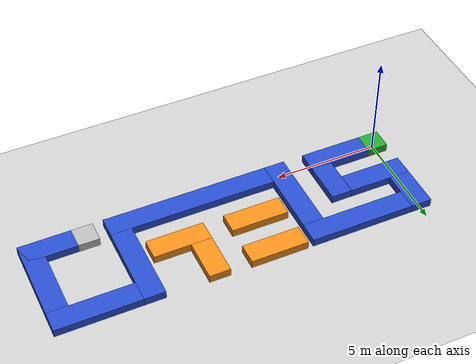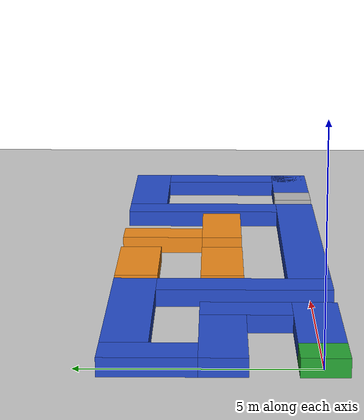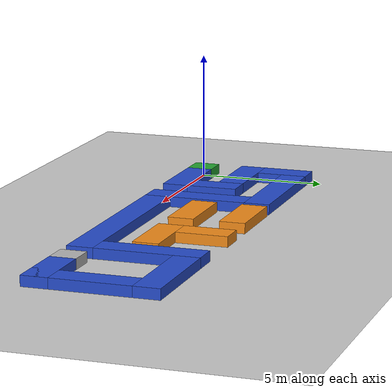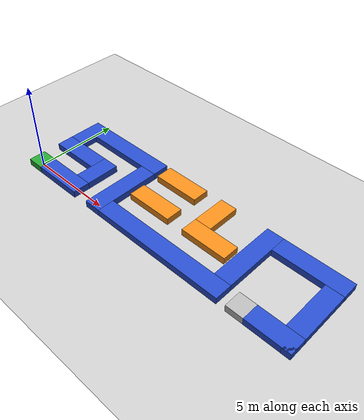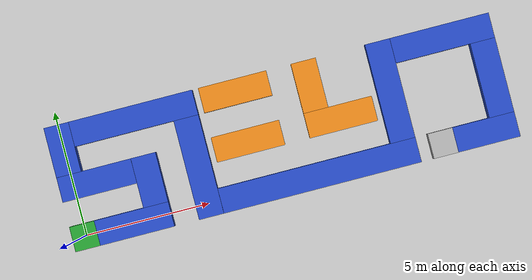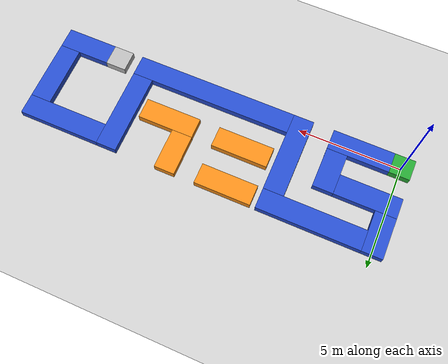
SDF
<sdf version='1.6'>
  <world name='default'>
    <light name='sun' type='directional'>
      <cast_shadows>1</cast_shadows>
      <pose frame=''>0 0 10 0 -0 0</pose>
      <diffuse>0.8 0.8 0.8 1</diffuse>
      <specular>0.2 0.2 0.2 1</specular>
      <attenuation>
        <range>1000</range>
        <constant>0.9</constant>
        <linear>0.01</linear>
        <quadratic>0.001</quadratic>
      </attenuation>
      <direction>-0.5 0.1 -0.9</direction>
    </light>
    <model name='ground_plane'>
      <static>1</static>
      <link name='link'>
        <collision name='collision'>
          <geometry>
            <plane>
              <normal>0 0 1</normal>
              <size>100 100</size>
            </plane>
          </geometry>
          <surface>
            <contact>
              <collide_bitmask>65535</collide_bitmask>
              <ode/>
            </contact>
            <friction>
              <ode>
                <mu>100</mu>
                <mu2>50</mu2>
              </ode>
              <torsional>
                <ode/>
              </torsional>
            </friction>
            <bounce/>
          </surface>
          <max_contacts>10</max_contacts>
        </collision>
        <visual name='visual'>
          <cast_shadows>0</cast_shadows>
          <geometry>
            <plane>
              <normal>0 0 1</normal>
              <size>100 100</size>
            </plane>
          </geometry>
          <material>
            <script>
              <uri>file://media/materials/scripts/gazebo.material</uri>
              <name>Gazebo/Grey</name>
            </script>
          </material>
        </visual>
        <self_collide>0</self_collide>
        <enable_wind>0</enable_wind>
        <kinematic>0</kinematic>
      </link>
    </model>
    <gravity>0 0 -9.8</gravity>
    <magnetic_field>6e-06 2.3e-05 -4.2e-05</magnetic_field>
    <atmosphere type='adiabatic'/>
    <physics name='default_physics' default='0' type='ode'>
      <max_step_size>0.001</max_step_size>
      <real_time_factor>1</real_time_factor>
      <real_time_update_rate>1000</real_time_update_rate>
    </physics>
    <scene>
      <ambient>0.4 0.4 0.4 1</ambient>
      <background>0.7 0.7 0.7 1</background>
      <shadows>1</shadows>
    </scene>
    <audio>
      <device>default</device>
    </audio>
    <wind/>
    <spherical_coordinates>
      <surface_model>EARTH_WGS84</surface_model>
      <latitude_deg>0</latitude_deg>
      <longitude_deg>0</longitude_deg>
      <elevation>0</elevation>
      <heading_deg>0</heading_deg>
    </spherical_coordinates>
    <model name='path_8'>
      <link name='block_link'>
        <pose frame=''>0 0 0 0 -0 0</pose>
        <inertial>
          <pose frame=''>0 0 0.2 0 -0 0</pose>
          <mass>500</mass>
          <inertia>
            <ixx>48.3333</ixx>
            <ixy>0</ixy>
            <ixz>0</ixz>
            <iyy>673.333</iyy>
            <iyz>0</iyz>
            <izz>708.333</izz>
          </inertia>
        </inertial>
        <collision name='block_link_collision'>
          <pose frame=''>0 0 0.2 0 -0 0</pose>
          <geometry>
            <box>
              <size>4 1 0.4</size>
            </box>
          </geometry>
          <surface>
            <contact>
              <ode/>
            </contact>
            <friction>
              <ode/>
              <torsional>
                <ode/>
              </torsional>
            </friction>
            <bounce/>
          </surface>
          <max_contacts>10</max_contacts>
        </collision>
        <visual name='block_link_visual'>
          <pose frame=''>0 0 0.2 0 -0 0</pose>
          <geometry>
            <box>
              <size>4 1 0.4</size>
            </box>
          </geometry>
          <material>
            <script>
              <name>Gazebo/Blue</name>
              <uri>file://media/materials/scripts/gazebo.material</uri>
            </script>
          </material>
        </visual>
        <gravity>1</gravity>
        <velocity_decay/>
        <self_collide>0</self_collide>
        <enable_wind>0</enable_wind>
        <kinematic>0</kinematic>
      </link>
      <static>1</static>
      <pose frame=''>13 2.5 0 0 -0 1.57</pose>
    </model>
    <model name='path_5'>
      <link name='block_link'>
        <pose frame=''>0 0 0 0 -0 0</pose>
        <inertial>
          <pose frame=''>0 0 0.2 0 -0 0</pose>
          <mass>500</mass>
          <inertia>
            <ixx>48.3333</ixx>
            <ixy>0</ixy>
            <ixz>0</ixz>
            <iyy>1048.33</iyy>
            <iyz>0</iyz>
            <izz>1083.33</izz>
          </inertia>
        </inertial>
        <collision name='block_link_collision'>
          <pose frame=''>0 0 0.2 0 -0 0</pose>
          <geometry>
            <box>
              <size>5 1 0.4</size>
            </box>
          </geometry>
          <surface>
            <contact>
              <ode/>
            </contact>
            <friction>
              <ode/>
              <torsional>
                <ode/>
              </torsional>
            </friction>
            <bounce/>
          </surface>
          <max_contacts>10</max_contacts>
        </collision>
        <visual name='block_link_visual'>
          <pose frame=''>0 0 0.2 0 -0 0</pose>
          <geometry>
            <box>
              <size>5 1 0.4</size>
            </box>
          </geometry>
          <material>
            <script>
              <name>Gazebo/Blue</name>
              <uri>file://media/materials/scripts/gazebo.material</uri>
            </script>
          </material>
        </visual>
        <gravity>1</gravity>
        <velocity_decay/>
        <self_collide>0</self_collide>
        <enable_wind>0</enable_wind>
        <kinematic>0</kinematic>
      </link>
      <static>1</static>
      <pose frame=''>3 4 0 0 -0 0</pose>
    </model>
    <model name='path_9'>
      <link name='block_link'>
        <pose frame=''>0 0 0 0 -0 0</pose>
        <inertial>
          <pose frame=''>0 0 0.2 0 -0 0</pose>
          <mass>500</mass>
          <inertia>
            <ixx>48.3333</ixx>
            <ixy>0</ixy>
            <ixz>0</ixz>
            <iyy>673.333</iyy>
            <iyz>0</iyz>
            <izz>708.333</izz>
          </inertia>
        </inertial>
        <collision name='block_link_collision'>
          <pose frame=''>0 0 0.2 0 -0 0</pose>
          <geometry>
            <box>
              <size>4 1 0.4</size>
            </box>
          </geometry>
          <surface>
            <contact>
              <ode/>
            </contact>
            <friction>
              <ode/>
              <torsional>
                <ode/>
              </torsional>
            </friction>
            <bounce/>
          </surface>
          <max_contacts>10</max_contacts>
        </collision>
        <visual name='block_link_visual'>
          <pose frame=''>0 0 0.2 0 -0 0</pose>
          <geometry>
            <box>
              <size>4 1 0.4</size>
            </box>
          </geometry>
          <material>
            <script>
              <name>Gazebo/Blue</name>
              <uri>file://media/materials/scripts/gazebo.material</uri>
            </script>
          </material>
        </visual>
        <gravity>1</gravity>
        <velocity_decay/>
        <self_collide>0</self_collide>
        <enable_wind>0</enable_wind>
        <kinematic>0</kinematic>
      </link>
      <static>1</static>
      <pose frame=''>15.5 4 0 0 -0 0</pose>
    </model>
    <model name='end_block'>
      <link name='block_link'>
        <pose frame=''>0 0 0 0 -0 0</pose>
        <inertial>
          <pose frame=''>0 0 0.2 0 -0 0</pose>
          <mass>500</mass>
          <inertia>
            <ixx>48.3333</ixx>
            <ixy>0</ixy>
            <ixz>0</ixz>
            <iyy>48.3333</iyy>
            <iyz>0</iyz>
            <izz>83.3333</izz>
          </inertia>
        </inertial>
        <collision name='block_link_collision'>
          <pose frame=''>0 0 0.2 0 -0 0</pose>
          <geometry>
            <box>
              <size>1 1 0.4</size>
            </box>
          </geometry>
          <surface>
            <contact>
              <ode/>
            </contact>
            <friction>
              <ode/>
              <torsional>
                <ode/>
              </torsional>
            </friction>
            <bounce/>
          </surface>
          <max_contacts>10</max_contacts>
        </collision>
        <visual name='block_link_visual'>
          <pose frame=''>0 0 0.2 0 -0 0</pose>
          <geometry>
            <box>
              <size>1 1 0.4</size>
            </box>
          </geometry>
          <material>
            <script>
              <name>Gazebo/CoM</name>
              <uri>file://media/materials/scripts/gazebo.material</uri>
            </script>
          </material>
        </visual>
        <gravity>1</gravity>
        <velocity_decay/>
        <self_collide>0</self_collide>
        <enable_wind>0</enable_wind>
        <kinematic>0</kinematic>
      </link>
      <static>1</static>
      <pose frame=''>14.5 0 0 0 -0 0</pose>
    </model>
    <model name='design_path_2'>
      <link name='block_link'>
        <pose frame=''>0 0 0 0 -0 0</pose>
        <inertial>
          <pose frame=''>0 0 0.2 0 -0 0</pose>
          <mass>500</mass>
          <inertia>
            <ixx>48.3333</ixx>
            <ixy>0</ixy>
            <ixz>0</ixz>
            <iyy>321.771</iyy>
            <iyz>0</iyz>
            <izz>356.771</izz>
          </inertia>
        </inertial>
        <collision name='block_link_collision'>
          <pose frame=''>0 0 0.2 0 -0 0</pose>
          <geometry>
            <box>
              <size>2.75 1 0.4</size>
            </box>
          </geometry>
          <surface>
            <contact>
              <ode/>
            </contact>
            <friction>
              <ode/>
              <torsional>
                <ode/>
              </torsional>
            </friction>
            <bounce/>
          </surface>
          <max_contacts>10</max_contacts>
        </collision>
        <visual name='block_link_visual'>
          <pose frame=''>0 0 0.2 0 -0 0</pose>
          <geometry>
            <box>
              <size>2.75 1 0.4</size>
            </box>
          </geometry>
          <material>
            <script>
              <name>Gazebo/Orange</name>
              <uri>file://media/materials/scripts/gazebo.material</uri>
            </script>
          </material>
        </visual>
        <gravity>1</gravity>
        <velocity_decay/>
        <self_collide>0</self_collide>
        <enable_wind>0</enable_wind>
        <kinematic>0</kinematic>
      </link>
      <static>1</static>
      <pose frame=''>7.125 2 0 0 -0 0</pose>
    </model>
    <model name='path_11'>
      <link name='block_link'>
        <pose frame=''>0 0 0 0 -0 0</pose>
        <inertial>
          <pose frame=''>0 0 0.2 0 -0 0</pose>
          <mass>500</mass>
          <inertia>
            <ixx>48.3333</ixx>
            <ixy>0</ixy>
            <ixz>0</ixz>
            <iyy>267.083</iyy>
            <iyz>0</iyz>
            <izz>302.083</izz>
          </inertia>
        </inertial>
        <collision name='block_link_collision'>
          <pose frame=''>0 0 0.2 0 -0 0</pose>
          <geometry>
            <box>
              <size>2.5 1 0.4</size>
            </box>
          </geometry>
          <surface>
            <contact>
              <ode/>
            </contact>
            <friction>
              <ode/>
              <torsional>
                <ode/>
              </torsional>
            </friction>
            <bounce/>
          </surface>
          <max_contacts>10</max_contacts>
        </collision>
        <visual name='block_link_visual'>
          <pose frame=''>0 0 0.2 0 -0 0</pose>
          <geometry>
            <box>
              <size>2.5 1 0.4</size>
            </box>
          </geometry>
          <material>
            <script>
              <name>Gazebo/Blue</name>
              <uri>file://media/materials/scripts/gazebo.material</uri>
            </script>
          </material>
        </visual>
        <gravity>1</gravity>
        <velocity_decay/>
        <self_collide>0</self_collide>
        <enable_wind>0</enable_wind>
        <kinematic>0</kinematic>
      </link>
      <static>1</static>
      <pose frame=''>16.25 0 0 0 -0 0</pose>
    </model>
    <model name='design_path_4'>
      <link name='block_link'>
        <pose frame=''>0 0 0 0 -0 0</pose>
        <inertial>
          <pose frame=''>0 0 0.2 0 -0 0</pose>
          <mass>500</mass>
          <inertia>
            <ixx>48.3333</ixx>
            <ixy>0</ixy>
            <ixz>0</ixz>
            <iyy>173.333</iyy>
            <iyz>0</iyz>
            <izz>208.333</izz>
          </inertia>
        </inertial>
        <collision name='block_link_collision'>
          <pose frame=''>0 0 0.2 0 -0 0</pose>
          <geometry>
            <box>
              <size>2 1 0.4</size>
            </box>
          </geometry>
          <surface>
            <contact>
              <ode/>
            </contact>
            <friction>
              <ode/>
              <torsional>
                <ode/>
              </torsional>
            </friction>
            <bounce/>
          </surface>
          <max_contacts>10</max_contacts>
        </collision>
        <visual name='block_link_visual'>
          <pose frame=''>0 0 0.2 0 -0 0</pose>
          <geometry>
            <box>
              <size>2 1 0.4</size>
            </box>
          </geometry>
          <material>
            <script>
              <name>Gazebo/Orange</name>
              <uri>file://media/materials/scripts/gazebo.material</uri>
            </script>
          </material>
        </visual>
        <gravity>1</gravity>
        <velocity_decay/>
        <self_collide>0</self_collide>
        <enable_wind>0</enable_wind>
        <kinematic>0</kinematic>
      </link>
      <static>1</static>
      <pose frame=''>10 3.5 0 0 -0 1.57</pose>
    </model>
    <model name='path_3'>
      <link name='block_link'>
        <pose frame=''>0 0 0 0 -0 0</pose>
        <inertial>
          <pose frame=''>0 0 0.2 0 -0 0</pose>
          <mass>500</mass>
          <inertia>
            <ixx>48.3333</ixx>
            <ixy>0</ixy>
            <ixz>0</ixz>
            <iyy>381.667</iyy>
            <iyz>0</iyz>
            <izz>416.667</izz>
          </inertia>
        </inertial>
        <collision name='block_link_collision'>
          <pose frame=''>0 0 0.2 0 -0 0</pose>
          <geometry>
            <box>
              <size>3 1 0.4</size>
            </box>
          </geometry>
          <surface>
            <contact>
              <ode/>
            </contact>
            <friction>
              <ode/>
              <torsional>
                <ode/>
              </torsional>
            </friction>
            <bounce/>
          </surface>
          <max_contacts>10</max_contacts>
        </collision>
        <visual name='block_link_visual'>
          <pose frame=''>0 0 0.2 0 -0 0</pose>
          <geometry>
            <box>
              <size>3 1 0.4</size>
            </box>
          </geometry>
          <material>
            <script>
              <name>Gazebo/Blue</name>
              <uri>file://media/materials/scripts/gazebo.material</uri>
            </script>
          </material>
        </visual>
        <gravity>1</gravity>
        <velocity_decay/>
        <self_collide>0</self_collide>
        <enable_wind>0</enable_wind>
        <kinematic>0</kinematic>
      </link>
      <static>1</static>
      <pose frame=''>1 2 0 0 -0 0</pose>
    </model>
    <model name='start_block'>
      <link name='block_link'>
        <pose frame=''>0 0 0 0 -0 0</pose>
        <inertial>
          <pose frame=''>0 0 0.2 0 -0 0</pose>
          <mass>500</mass>
          <inertia>
            <ixx>48.3333</ixx>
            <ixy>0</ixy>
            <ixz>0</ixz>
            <iyy>48.3333</iyy>
            <iyz>0</iyz>
            <izz>83.3333</izz>
          </inertia>
        </inertial>
        <collision name='block_link_collision'>
          <pose frame=''>0 0 0.2 0 -0 0</pose>
          <geometry>
            <box>
              <size>1 1 0.4</size>
            </box>
          </geometry>
          <surface>
            <contact>
              <ode/>
            </contact>
            <friction>
              <ode/>
              <torsional>
                <ode/>
              </torsional>
            </friction>
            <bounce/>
          </surface>
          <max_contacts>10</max_contacts>
        </collision>
        <visual name='block_link_visual'>
          <pose frame=''>0 0 0.2 0 -0 0</pose>
          <geometry>
            <box>
              <size>1 1 0.4</size>
            </box>
          </geometry>
          <material>
            <script>
              <name>Gazebo/Green</name>
              <uri>file://media/materials/scripts/gazebo.material</uri>
            </script>
          </material>
        </visual>
        <gravity>1</gravity>
        <velocity_decay/>
        <self_collide>0</self_collide>
        <enable_wind>0</enable_wind>
        <kinematic>0</kinematic>
      </link>
      <static>1</static>
      <pose frame=''>0 0 0 0 -0 0</pose>
    </model>
    <model name='path_7'>
      <link name='block_link'>
        <pose frame=''>0 0 0 0 -0 0</pose>
        <inertial>
          <pose frame=''>0 0 0.2 0 -0 0</pose>
          <mass>500</mass>
          <inertia>
            <ixx>48.3333</ixx>
            <ixy>0</ixy>
            <ixz>0</ixz>
            <iyy>2673.33</iyy>
            <iyz>0</iyz>
            <izz>2708.33</izz>
          </inertia>
        </inertial>
        <collision name='block_link_collision'>
          <pose frame=''>0 0 0.2 0 -0 0</pose>
          <geometry>
            <box>
              <size>8 1 0.4</size>
            </box>
          </geometry>
          <surface>
            <contact>
              <ode/>
            </contact>
            <friction>
              <ode/>
              <torsional>
                <ode/>
              </torsional>
            </friction>
            <bounce/>
          </surface>
          <max_contacts>10</max_contacts>
        </collision>
        <visual name='block_link_visual'>
          <pose frame=''>0 0 0.2 0 -0 0</pose>
          <geometry>
            <box>
              <size>8 1 0.4</size>
            </box>
          </geometry>
          <material>
            <script>
              <name>Gazebo/Blue</name>
              <uri>file://media/materials/scripts/gazebo.material</uri>
            </script>
          </material>
        </visual>
        <gravity>1</gravity>
        <velocity_decay/>
        <self_collide>0</self_collide>
        <enable_wind>0</enable_wind>
        <kinematic>0</kinematic>
      </link>
      <static>1</static>
      <pose frame=''>9.5 0 0 0 -0 0</pose>
    </model>
    <model name='design_path_3'>
      <link name='block_link'>
        <pose frame=''>0 0 0 0 -0 0</pose>
        <inertial>
          <pose frame=''>0 0 0.2 0 -0 0</pose>
          <mass>500</mass>
          <inertia>
            <ixx>48.3333</ixx>
            <ixy>0</ixy>
            <ixz>0</ixz>
            <iyy>321.771</iyy>
            <iyz>0</iyz>
            <izz>356.771</izz>
          </inertia>
        </inertial>
        <collision name='block_link_collision'>
          <pose frame=''>0 0 0.2 0 -0 0</pose>
          <geometry>
            <box>
              <size>2.75 1 0.4</size>
            </box>
          </geometry>
          <surface>
            <contact>
              <ode/>
            </contact>
            <friction>
              <ode/>
              <torsional>
                <ode/>
              </torsional>
            </friction>
            <bounce/>
          </surface>
          <max_contacts>10</max_contacts>
        </collision>
        <visual name='block_link_visual'>
          <pose frame=''>0 0 0.2 0 -0 0</pose>
          <geometry>
            <box>
              <size>2.75 1 0.4</size>
            </box>
          </geometry>
          <material>
            <script>
              <name>Gazebo/Orange</name>
              <uri>file://media/materials/scripts/gazebo.material</uri>
            </script>
          </material>
        </visual>
        <gravity>1</gravity>
        <velocity_decay/>
        <self_collide>0</self_collide>
        <enable_wind>0</enable_wind>
        <kinematic>0</kinematic>
      </link>
      <static>1</static>
      <pose frame=''>10.875 2 0 0 -0 0</pose>
    </model>
    <model name='path_1'>
      <link name='block_link'>
        <pose frame=''>0 0 0 0 -0 0</pose>
        <inertial>
          <pose frame=''>0 0 0.2 0 -0 0</pose>
          <mass>500</mass>
          <inertia>
            <ixx>48.3333</ixx>
            <ixy>0</ixy>
            <ixz>0</ixz>
            <iyy>381.667</iyy>
            <iyz>0</iyz>
            <izz>416.667</izz>
          </inertia>
        </inertial>
        <collision name='block_link_collision'>
          <pose frame=''>0 0 0.2 0 -0 0</pose>
          <geometry>
            <box>
              <size>3 1 0.4</size>
            </box>
          </geometry>
          <surface>
            <contact>
              <ode/>
            </contact>
            <friction>
              <ode/>
              <torsional>
                <ode/>
              </torsional>
            </friction>
            <bounce/>
          </surface>
          <max_contacts>10</max_contacts>
        </collision>
        <visual name='block_link_visual'>
          <pose frame=''>0 0 0.2 0 -0 0</pose>
          <geometry>
            <box>
              <size>3 1 0.4</size>
            </box>
          </geometry>
          <material>
            <script>
              <name>Gazebo/Blue</name>
              <uri>file://media/materials/scripts/gazebo.material</uri>
            </script>
          </material>
        </visual>
        <gravity>1</gravity>
        <velocity_decay/>
        <self_collide>0</self_collide>
        <enable_wind>0</enable_wind>
        <kinematic>0</kinematic>
      </link>
      <static>1</static>
      <pose frame=''>2 0 0 0 -0 0</pose>
    </model>
    <model name='path_10'>
      <link name='block_link'>
        <pose frame=''>0 0 0 0 -0 0</pose>
        <inertial>
          <pose frame=''>0 0 0.2 0 -0 0</pose>
          <mass>500</mass>
          <inertia>
            <ixx>48.3333</ixx>
            <ixy>0</ixy>
            <ixz>0</ixz>
            <iyy>673.333</iyy>
            <iyz>0</iyz>
            <izz>708.333</izz>
          </inertia>
        </inertial>
        <collision name='block_link_collision'>
          <pose frame=''>0 0 0.2 0 -0 0</pose>
          <geometry>
            <box>
              <size>4 1 0.4</size>
            </box>
          </geometry>
          <surface>
            <contact>
              <ode/>
            </contact>
            <friction>
              <ode/>
              <torsional>
                <ode/>
              </torsional>
            </friction>
            <bounce/>
          </surface>
          <max_contacts>10</max_contacts>
        </collision>
        <visual name='block_link_visual'>
          <pose frame=''>0 0 0.2 0 -0 0</pose>
          <geometry>
            <box>
              <size>4 1 0.4</size>
            </box>
          </geometry>
          <material>
            <script>
              <name>Gazebo/Blue</name>
              <uri>file://media/materials/scripts/gazebo.material</uri>
            </script>
          </material>
        </visual>
        <gravity>1</gravity>
        <velocity_decay/>
        <self_collide>0</self_collide>
        <enable_wind>0</enable_wind>
        <kinematic>0</kinematic>
      </link>
      <static>1</static>
      <pose frame=''>17 1.5 0 0 -0 1.57</pose>
    </model>
    <model name='path_6'>
      <link name='block_link'>
        <pose frame=''>0 0 0 0 -0 0</pose>
        <inertial>
          <pose frame=''>0 0 0.2 0 -0 0</pose>
          <mass>500</mass>
          <inertia>
            <ixx>48.3333</ixx>
            <ixy>0</ixy>
            <ixz>0</ixz>
            <iyy>673.333</iyy>
            <iyz>0</iyz>
            <izz>708.333</izz>
          </inertia>
        </inertial>
        <collision name='block_link_collision'>
          <pose frame=''>0 0 0.2 0 -0 0</pose>
          <geometry>
            <box>
              <size>4 1 0.4</size>
            </box>
          </geometry>
          <surface>
            <contact>
              <ode/>
            </contact>
            <friction>
              <ode/>
              <torsional>
                <ode/>
              </torsional>
            </friction>
            <bounce/>
          </surface>
          <max_contacts>10</max_contacts>
        </collision>
        <visual name='block_link_visual'>
          <pose frame=''>0 0 0.2 0 -0 0</pose>
          <geometry>
            <box>
              <size>4 1 0.4</size>
            </box>
          </geometry>
          <material>
            <script>
              <name>Gazebo/Blue</name>
              <uri>file://media/materials/scripts/gazebo.material</uri>
            </script>
          </material>
        </visual>
        <gravity>1</gravity>
        <velocity_decay/>
        <self_collide>0</self_collide>
        <enable_wind>0</enable_wind>
        <kinematic>0</kinematic>
      </link>
      <static>1</static>
      <pose frame=''>5 1.5 0 0 -0 1.57</pose>
    </model>
    <model name='path_2'>
      <link name='block_link'>
        <pose frame=''>0 0 0 0 -0 0</pose>
        <inertial>
          <pose frame=''>0 0 0.2 0 -0 0</pose>
          <mass>500</mass>
          <inertia>
            <ixx>48.3333</ixx>
            <ixy>0</ixy>
            <ixz>0</ixz>
            <iyy>173.333</iyy>
            <iyz>0</iyz>
            <izz>208.333</izz>
          </inertia>
        </inertial>
        <collision name='block_link_collision'>
          <pose frame=''>0 0 0.2 0 -0 0</pose>
          <geometry>
            <box>
              <size>2 1 0.4</size>
            </box>
          </geometry>
          <surface>
            <contact>
              <ode/>
            </contact>
            <friction>
              <ode/>
              <torsional>
                <ode/>
              </torsional>
            </friction>
            <bounce/>
          </surface>
          <max_contacts>10</max_contacts>
        </collision>
        <visual name='block_link_visual'>
          <pose frame=''>0 0 0.2 0 -0 0</pose>
          <geometry>
            <box>
              <size>2 1 0.4</size>
            </box>
          </geometry>
          <material>
            <script>
              <name>Gazebo/Blue</name>
              <uri>file://media/materials/scripts/gazebo.material</uri>
            </script>
          </material>
        </visual>
        <gravity>1</gravity>
        <velocity_decay/>
        <self_collide>0</self_collide>
        <enable_wind>0</enable_wind>
        <kinematic>0</kinematic>
      </link>
      <static>1</static>
      <pose frame=''>3 1.5 0 0 -0 1.57</pose>
    </model>
    <model name='design_path_1'>
      <link name='block_link'>
        <pose frame=''>0 0 0 0 -0 0</pose>
        <inertial>
          <pose frame=''>0 0 0.2 0 -0 0</pose>
          <mass>500</mass>
          <inertia>
            <ixx>48.3333</ixx>
            <ixy>0</ixy>
            <ixz>0</ixz>
            <iyy>321.771</iyy>
            <iyz>0</iyz>
            <izz>356.771</izz>
          </inertia>
        </inertial>
        <collision name='block_link_collision'>
          <pose frame=''>0 0 0.2 0 -0 0</pose>
          <geometry>
            <box>
              <size>2.75 1 0.4</size>
            </box>
          </geometry>
          <surface>
            <contact>
              <ode/>
            </contact>
            <friction>
              <ode/>
              <torsional>
                <ode/>
              </torsional>
            </friction>
            <bounce/>
          </surface>
          <max_contacts>10</max_contacts>
        </collision>
        <visual name='block_link_visual'>
          <pose frame=''>0 0 0.2 0 -0 0</pose>
          <geometry>
            <box>
              <size>2.75 1 0.4</size>
            </box>
          </geometry>
          <material>
            <script>
              <name>Gazebo/Orange</name>
              <uri>file://media/materials/scripts/gazebo.material</uri>
            </script>
          </material>
        </visual>
        <gravity>1</gravity>
        <velocity_decay/>
        <self_collide>0</self_collide>
        <enable_wind>0</enable_wind>
        <kinematic>0</kinematic>
      </link>
      <static>1</static>
      <pose frame=''>7.125 4 0 0 -0 0</pose>
    </model>
    <model name='path_4'>
      <link name='block_link'>
        <pose frame=''>0 0 0 0 -0 0</pose>
        <inertial>
          <pose frame=''>0 0 0.2 0 -0 0</pose>
          <mass>500</mass>
          <inertia>
            <ixx>48.3333</ixx>
            <ixy>0</ixy>
            <ixz>0</ixz>
            <iyy>173.333</iyy>
            <iyz>0</iyz>
            <izz>208.333</izz>
          </inertia>
        </inertial>
        <collision name='block_link_collision'>
          <pose frame=''>0 0 0.2 0 -0 0</pose>
          <geometry>
            <box>
              <size>2 1 0.4</size>
            </box>
          </geometry>
          <surface>
            <contact>
              <ode/>
            </contact>
            <friction>
              <ode/>
              <torsional>
                <ode/>
              </torsional>
            </friction>
            <bounce/>
          </surface>
          <max_contacts>10</max_contacts>
        </collision>
        <visual name='block_link_visual'>
          <pose frame=''>0 0 0.2 0 -0 0</pose>
          <geometry>
            <box>
              <size>2 1 0.4</size>
            </box>
          </geometry>
          <material>
            <script>
              <name>Gazebo/Blue</name>
              <uri>file://media/materials/scripts/gazebo.material</uri>
            </script>
          </material>
        </visual>
        <gravity>1</gravity>
        <velocity_decay/>
        <self_collide>0</self_collide>
        <enable_wind>0</enable_wind>
        <kinematic>0</kinematic>
      </link>
      <static>1</static>
      <pose frame=''>0 3.5 0 0 -0 1.57</pose>
    </model>
    <gui fullscreen='0'>
      <camera name='user_camera'>
        <pose frame=''>-1.21787 -10.0261 10.0005 -0 0.635642 0.940197</pose>
        <view_controller>orbit</view_controller>
        <projection_type>perspective</projection_type>
      </camera>
    </gui>
  </world>
</sdf>
